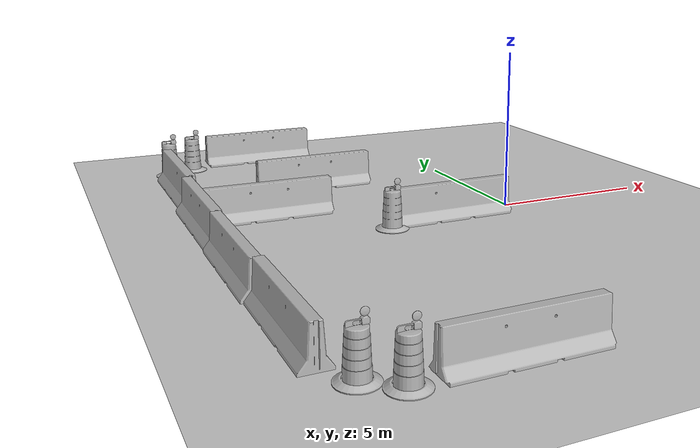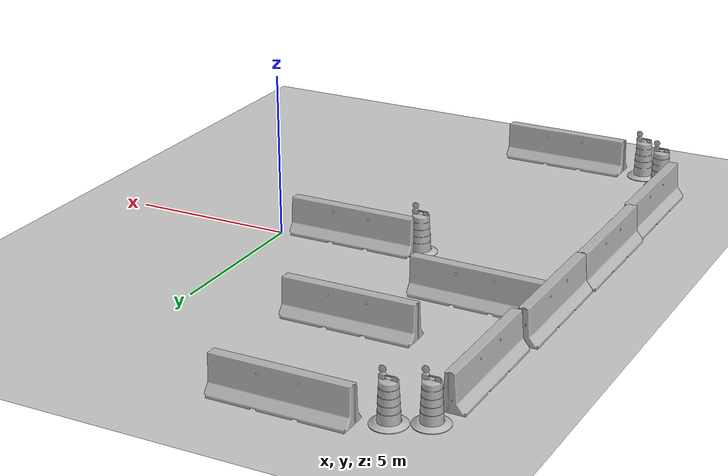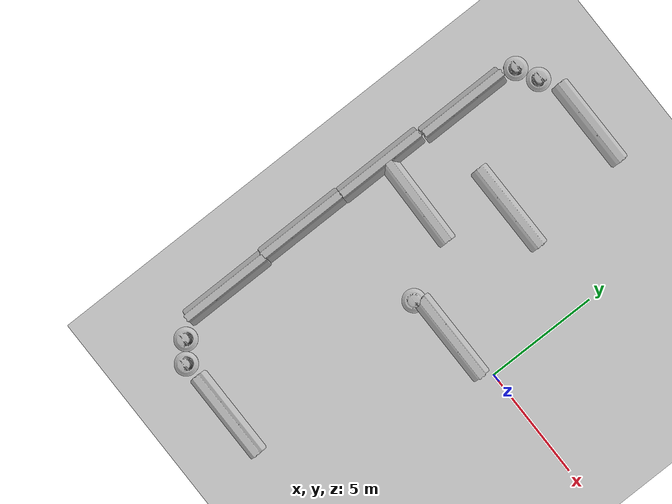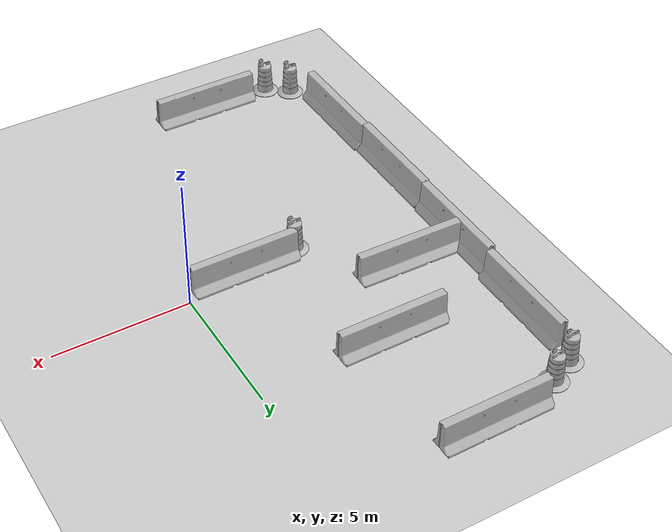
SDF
<sdf version="1.6">
 <world name="default">
  <model name="ground_plane">
   <static>1</static>
   <link name="link">
    <collision name="collision">
     <geometry><plane><normal>0 0 1</normal><size>100 100</size></plane></geometry>
     <surface><friction><ode><mu>100</mu><mu2>50</mu2></ode></friction></surface>
    </collision>
    <visual name="visual">
     <cast_shadows>0</cast_shadows>
     <geometry><plane><normal>0 0 1</normal><size>100 100</size></plane></geometry>
     <material>
      <script><uri>file://media/materials/scripts/gazebo.material</uri><name>Gazebo/Grey</name></script>
     </material>
    </visual>
   </link>
  </model>
  <model name="jersey_barrier">
   <static>1</static>
   <link name="link">
    <visual name="visual">
     <geometry><mesh><uri>model://jersey_barrier/meshes/jersey_barrier.dae</uri></mesh></geometry>
    </visual>
    <collision name="upright">
     <pose>0 0 0.5715 0 -0 0</pose>
     <geometry><box><size>4.06542 0.3063 1.143</size></box></geometry>
    </collision>
    <collision name="base">
     <pose>0 0 0.032258 0 -0 0</pose>
     <geometry><box><size>4.06542 0.8107 0.064516</size></box></geometry>
    </collision>
    <collision name="base2">
     <pose>0 0 0.1 0 -0 0</pose>
     <geometry><box><size>4.06542 0.65 0.1</size></box></geometry>
    </collision>
    <collision name="base3">
     <pose>0 0 0.2 0 -0 0</pose>
     <geometry><box><size>4.06542 0.5 0.1</size></box></geometry>
    </collision>
    <collision name="left-angle">
     <pose>0 -0.224 0.2401 0.9 -0 0</pose>
     <geometry><box><size>4.06542 0.5 0.064516</size></box></geometry>
    </collision>
    <collision name="right-angle">
     <pose>0 0.224 0.2401 -0.9 0 0</pose>
     <geometry><box><size>4.06542 0.5 0.064516</size></box></geometry>
    </collision>
   </link>
   <pose>-5.65677 9.4608 0 0 -0 0</pose>
  </model>
  <model name="jersey_barrier_clone_2_clone_2">
   <static>1</static>
   <link name="link">
    <visual name="visual">
     <geometry><mesh><uri>model://jersey_barrier/meshes/jersey_barrier.dae</uri></mesh></geometry>
    </visual>
    <collision name="upright">
     <pose>0 0 0.5715 0 -0 0</pose>
     <geometry><box><size>4.06542 0.3063 1.143</size></box></geometry>
    </collision>
    <collision name="base">
     <pose>0 0 0.032258 0 -0 0</pose>
     <geometry><box><size>4.06542 0.8107 0.064516</size></box></geometry>
    </collision>
    <collision name="base2">
     <pose>0 0 0.1 0 -0 0</pose>
     <geometry><box><size>4.06542 0.65 0.1</size></box></geometry>
    </collision>
    <collision name="base3">
     <pose>0 0 0.2 0 -0 0</pose>
     <geometry><box><size>4.06542 0.5 0.1</size></box></geometry>
    </collision>
    <collision name="left-angle">
     <pose>0 -0.224 0.2401 0.9 -0 0</pose>
     <geometry><box><size>4.06542 0.5 0.064516</size></box></geometry>
    </collision>
    <collision name="right-angle">
     <pose>0 0.224 0.2401 -0.9 0 0</pose>
     <geometry><box><size>4.06542 0.5 0.064516</size></box></geometry>
    </collision>
   </link>
   <pose>-5.44605 -9.49634 0 0 -0 0</pose>
  </model>
  <model name="jersey_barrier_clone_3_clone_1_clone">
   <static>1</static>
   <link name="link">
    <visual name="visual">
     <geometry><mesh><uri>model://jersey_barrier/meshes/jersey_barrier.dae</uri></mesh></geometry>
    </visual>
    <collision name="upright">
     <pose>0 0 0.5715 0 -0 0</pose>
     <geometry><box><size>4.06542 0.3063 1.143</size></box></geometry>
    </collision>
    <collision name="base">
     <pose>0 0 0.032258 0 -0 0</pose>
     <geometry><box><size>4.06542 0.8107 0.064516</size></box></geometry>
    </collision>
    <collision name="base2">
     <pose>0 0 0.1 0 -0 0</pose>
     <geometry><box><size>4.06542 0.65 0.1</size></box></geometry>
    </collision>
    <collision name="base3">
     <pose>0 0 0.2 0 -0 0</pose>
     <geometry><box><size>4.06542 0.5 0.1</size></box></geometry>
    </collision>
    <collision name="left-angle">
     <pose>0 -0.224 0.2401 0.9 -0 0</pose>
     <geometry><box><size>4.06542 0.5 0.064516</size></box></geometry>
    </collision>
    <collision name="right-angle">
     <pose>0 0.224 0.2401 -0.9 0 0</pose>
     <geometry><box><size>4.06542 0.5 0.064516</size></box></geometry>
    </collision>
   </link>
   <pose>-9.54289 -6.33149 0 0 0 -1.56865</pose>
  </model>
  <model name="jersey_barrier_clone_3_clone_1_clone_0">
   <static>1</static>
   <link name="link">
    <visual name="visual">
     <geometry><mesh><uri>model://jersey_barrier/meshes/jersey_barrier.dae</uri></mesh></geometry>
    </visual>
    <collision name="upright">
     <pose>0 0 0.5715 0 -0 0</pose>
     <geometry><box><size>4.06542 0.3063 1.143</size></box></geometry>
    </collision>
    <collision name="base">
     <pose>0 0 0.032258 0 -0 0</pose>
     <geometry><box><size>4.06542 0.8107 0.064516</size></box></geometry>
    </collision>
    <collision name="base2">
     <pose>0 0 0.1 0 -0 0</pose>
     <geometry><box><size>4.06542 0.65 0.1</size></box></geometry>
    </collision>
    <collision name="base3">
     <pose>0 0 0.2 0 -0 0</pose>
     <geometry><box><size>4.06542 0.5 0.1</size></box></geometry>
    </collision>
    <collision name="left-angle">
     <pose>0 -0.224 0.2401 0.9 -0 0</pose>
     <geometry><box><size>4.06542 0.5 0.064516</size></box></geometry>
    </collision>
    <collision name="right-angle">
     <pose>0 0.224 0.2401 -0.9 0 0</pose>
     <geometry><box><size>4.06542 0.5 0.064516</size></box></geometry>
    </collision>
   </link>
   <pose>-9.6221 -2.35336 0 0 0 -1.56865</pose>
  </model>
  <model name="jersey_barrier_clone_3_clone_1_clone_1">
   <static>1</static>
   <link name="link">
    <visual name="visual">
     <geometry><mesh><uri>model://jersey_barrier/meshes/jersey_barrier.dae</uri></mesh></geometry>
    </visual>
    <collision name="upright">
     <pose>0 0 0.5715 0 -0 0</pose>
     <geometry><box><size>4.06542 0.3063 1.143</size></box></geometry>
    </collision>
    <collision name="base">
     <pose>0 0 0.032258 0 -0 0</pose>
     <geometry><box><size>4.06542 0.8107 0.064516</size></box></geometry>
    </collision>
    <collision name="base2">
     <pose>0 0 0.1 0 -0 0</pose>
     <geometry><box><size>4.06542 0.65 0.1</size></box></geometry>
    </collision>
    <collision name="base3">
     <pose>0 0 0.2 0 -0 0</pose>
     <geometry><box><size>4.06542 0.5 0.1</size></box></geometry>
    </collision>
    <collision name="left-angle">
     <pose>0 -0.224 0.2401 0.9 -0 0</pose>
     <geometry><box><size>4.06542 0.5 0.064516</size></box></geometry>
    </collision>
    <collision name="right-angle">
     <pose>0 0.224 0.2401 -0.9 0 0</pose>
     <geometry><box><size>4.06542 0.5 0.064516</size></box></geometry>
    </collision>
   </link>
   <pose>-9.58952 1.69745 0 0 0 -1.56865</pose>
  </model>
  <model name="jersey_barrier_clone_3_clone_1_clone_2">
   <static>1</static>
   <link name="link">
    <visual name="visual">
     <geometry><mesh><uri>model://jersey_barrier/meshes/jersey_barrier.dae</uri></mesh></geometry>
    </visual>
    <collision name="upright">
     <pose>0 0 0.5715 0 -0 0</pose>
     <geometry><box><size>4.06542 0.3063 1.143</size></box></geometry>
    </collision>
    <collision name="base">
     <pose>0 0 0.032258 0 -0 0</pose>
     <geometry><box><size>4.06542 0.8107 0.064516</size></box></geometry>
    </collision>
    <collision name="base2">
     <pose>0 0 0.1 0 -0 0</pose>
     <geometry><box><size>4.06542 0.65 0.1</size></box></geometry>
    </collision>
    <collision name="base3">
     <pose>0 0 0.2 0 -0 0</pose>
     <geometry><box><size>4.06542 0.5 0.1</size></box></geometry>
    </collision>
    <collision name="left-angle">
     <pose>0 -0.224 0.2401 0.9 -0 0</pose>
     <geometry><box><size>4.06542 0.5 0.064516</size></box></geometry>
    </collision>
    <collision name="right-angle">
     <pose>0 0.224 0.2401 -0.9 0 0</pose>
     <geometry><box><size>4.06542 0.5 0.064516</size></box></geometry>
    </collision>
   </link>
   <pose>-9.44715 5.83721 0 0 0 -1.56865</pose>
  </model>
  <model name="Construction Barrel_1">
   <link name="link">
    <inertial>
     <pose>0 0 0.4 0 -0 0</pose>
     <mass>500</mass>
     <inertia><ixx>51.2096</ixx><iyy>51.2096</iyy><izz>25</izz><ixy>0</ixy><ixz>0</ixz><iyz>0</iyz></inertia>
    </inertial>
    <collision name="collision">
     <geometry><mesh><uri>model://construction_barrel/meshes/construction_barrel.dae</uri></mesh></geometry>
    </collision>
    <visual name="visual">
     <geometry><mesh><uri>model://construction_barrel/meshes/construction_barrel.dae</uri></mesh></geometry>
    </visual>
   </link>
   <pose>-9.2726 8.48395 -0 0 -0 -4.6e-05</pose>
  </model>
  <model name="Construction Barrel_2">
   <link name="link">
    <inertial>
     <pose>0 0 0.4 0 -0 0</pose>
     <mass>500</mass>
     <inertia><ixx>51.2096</ixx><iyy>51.2096</iyy><izz>25</izz><ixy>0</ixy><ixz>0</ixz><iyz>0</iyz></inertia>
    </inertial>
    <collision name="collision">
     <geometry><mesh><uri>model://construction_barrel/meshes/construction_barrel.dae</uri></mesh></geometry>
    </collision>
    <visual name="visual">
     <geometry><mesh><uri>model://construction_barrel/meshes/construction_barrel.dae</uri></mesh></geometry>
    </visual>
   </link>
   <pose>-8.3436 8.93857 -1e-06 4e-06 -2e-06 -3e-05</pose>
  </model>
  <model name="Construction Barrel_4">
   <link name="link">
    <inertial>
     <pose>0 0 0.4 0 -0 0</pose>
     <mass>500</mass>
     <inertia><ixx>51.2096</ixx><iyy>51.2096</iyy><izz>25</izz><ixy>0</ixy><ixz>0</ixz><iyz>0</iyz></inertia>
    </inertial>
    <collision name="collision">
     <geometry><mesh><uri>model://construction_barrel/meshes/construction_barrel.dae</uri></mesh></geometry>
    </collision>
    <visual name="visual">
     <geometry><mesh><uri>model://construction_barrel/meshes/construction_barrel.dae</uri></mesh></geometry>
    </visual>
   </link>
   <pose>-8.13314 -9.57171 0 2e-06 1e-06 -0.00045</pose>
  </model>
  <model name="Construction Barrel_5">
   <link name="link">
    <inertial>
     <pose>0 0 0.4 0 -0 0</pose>
     <mass>500</mass>
     <inertia><ixx>51.2096</ixx><iyy>51.2096</iyy><izz>25</izz><ixy>0</ixy><ixz>0</ixz><iyz>0</iyz></inertia>
    </inertial>
    <collision name="collision">
     <geometry><mesh><uri>model://construction_barrel/meshes/construction_barrel.dae</uri></mesh></geometry>
    </collision>
    <visual name="visual">
     <geometry><mesh><uri>model://construction_barrel/meshes/construction_barrel.dae</uri></mesh></geometry>
    </visual>
   </link>
   <pose>-8.93846 -8.96004 -2e-06 7e-06 -4e-06 -0.000348</pose>
  </model>
  <model name="jersey_barrier_0">
   <static>1</static>
   <link name="link">
    <visual name="visual">
     <geometry><mesh><uri>model://jersey_barrier/meshes/jersey_barrier.dae</uri></mesh></geometry>
    </visual>
    <collision name="upright">
     <pose>0 0 0.5715 0 -0 0</pose>
     <geometry><box><size>4.06542 0.3063 1.143</size></box></geometry>
    </collision>
    <collision name="base">
     <pose>0 0 0.032258 0 -0 0</pose>
     <geometry><box><size>4.06542 0.8107 0.064516</size></box></geometry>
    </collision>
    <collision name="base2">
     <pose>0 0 0.1 0 -0 0</pose>
     <geometry><box><size>4.06542 0.65 0.1</size></box></geometry>
    </collision>
    <collision name="base3">
     <pose>0 0 0.2 0 -0 0</pose>
     <geometry><box><size>4.06542 0.5 0.1</size></box></geometry>
    </collision>
    <collision name="left-angle">
     <pose>0 -0.224 0.2401 0.9 -0 0</pose>
     <geometry><box><size>4.06542 0.5 0.064516</size></box></geometry>
    </collision>
    <collision name="right-angle">
     <pose>0 0.224 0.2401 -0.9 0 0</pose>
     <geometry><box><size>4.06542 0.5 0.064516</size></box></geometry>
    </collision>
   </link>
   <pose>-4.97429 4.73074 0 0 -0 0</pose>
  </model>
  <model name="jersey_barrier_0_clone_1">
   <static>1</static>
   <link name="link">
    <visual name="visual">
     <geometry><mesh><uri>model://jersey_barrier/meshes/jersey_barrier.dae</uri></mesh></geometry>
    </visual>
    <collision name="upright">
     <pose>0 0 0.5715 0 -0 0</pose>
     <geometry><box><size>4.06542 0.3063 1.143</size></box></geometry>
    </collision>
    <collision name="base">
     <pose>0 0 0.032258 0 -0 0</pose>
     <geometry><box><size>4.06542 0.8107 0.064516</size></box></geometry>
    </collision>
    <collision name="base2">
     <pose>0 0 0.1 0 -0 0</pose>
     <geometry><box><size>4.06542 0.65 0.1</size></box></geometry>
    </collision>
    <collision name="base3">
     <pose>0 0 0.2 0 -0 0</pose>
     <geometry><box><size>4.06542 0.5 0.1</size></box></geometry>
    </collision>
    <collision name="left-angle">
     <pose>0 -0.224 0.2401 0.9 -0 0</pose>
     <geometry><box><size>4.06542 0.5 0.064516</size></box></geometry>
    </collision>
    <collision name="right-angle">
     <pose>0 0.224 0.2401 -0.9 0 0</pose>
     <geometry><box><size>4.06542 0.5 0.064516</size></box></geometry>
    </collision>
   </link>
   <pose>-2.28125 -0.396276 0 0 -0 0</pose>
  </model>
  <model name="jersey_barrier_0_clone_1_clone_clone">
   <static>1</static>
   <link name="link">
    <visual name="visual">
     <geometry><mesh><uri>model://jersey_barrier/meshes/jersey_barrier.dae</uri></mesh></geometry>
    </visual>
    <collision name="upright">
     <pose>0 0 0.5715 0 -0 0</pose>
     <geometry><box><size>4.06542 0.3063 1.143</size></box></geometry>
    </collision>
    <collision name="base">
     <pose>0 0 0.032258 0 -0 0</pose>
     <geometry><box><size>4.06542 0.8107 0.064516</size></box></geometry>
    </collision>
    <collision name="base2">
     <pose>0 0 0.1 0 -0 0</pose>
     <geometry><box><size>4.06542 0.65 0.1</size></box></geometry>
    </collision>
    <collision name="base3">
     <pose>0 0 0.2 0 -0 0</pose>
     <geometry><box><size>4.06542 0.5 0.1</size></box></geometry>
    </collision>
    <collision name="left-angle">
     <pose>0 -0.224 0.2401 0.9 -0 0</pose>
     <geometry><box><size>4.06542 0.5 0.064516</size></box></geometry>
    </collision>
    <collision name="right-angle">
     <pose>0 0.224 0.2401 -0.9 0 0</pose>
     <geometry><box><size>4.06542 0.5 0.064516</size></box></geometry>
    </collision>
    <pose>-4.70694 -2.78766 0 0 0 -1.58136</pose>
    <velocity>0 0 0 0 -0 0</velocity>
    <acceleration>0 0 0 0 -0 0</acceleration>
    <wrench>0 0 0 0 -0 0</wrench>
   </link>
   <pose>-4.70694 -2.78766 0 0 0 -1.58136</pose>
   <scale>1 1 1</scale>
  </model>
  <model name="coke_can">
   <link name="link">
    <inertial>
     <pose>-0.01 -0.012 0.15 0 -0 0</pose>
     <mass>0.39</mass>
     <inertia><ixx>0.00058</ixx><ixy>0</ixy><ixz>0</ixz><iyy>0.00058</iyy><iyz>0</iyz><izz>0.00019</izz></inertia>
    </inertial>
    <collision name="collision">
     <pose>0 0 -0.46 0 -0 0</pose>
     <geometry><mesh><uri>model://coke_can/meshes/coke_can.dae</uri></mesh></geometry>
     <surface>
      <friction><ode><mu>1</mu><mu2>1</mu2></ode></friction>
      <contact><ode><kp>1e+07</kp><kd>1</kd><min_depth>0.001</min_depth><max_vel>0.1</max_vel></ode></contact>
     </surface>
    </collision>
    <visual name="visual">
     <pose>0 0 -0.46 0 -0 0</pose>
     <geometry><mesh><uri>model://coke_can/meshes/coke_can.dae</uri></mesh></geometry>
    </visual>
   </link>
   <pose>-3.00584 -2.50788 -0.004694 -0.043045 0.007276 -8.3e-05</pose>
  </model>
  <model name="Construction Barrel_6">
   <link name="link">
    <inertial>
     <pose>0 0 0.4 0 -0 0</pose>
     <mass>500</mass>
     <inertia><ixx>51.2096</ixx><iyy>51.2096</iyy><izz>25</izz><ixy>0</ixy><ixz>0</ixz><iyz>0</iyz></inertia>
    </inertial>
    <collision name="collision">
     <geometry><mesh><uri>model://construction_barrel/meshes/construction_barrel.dae</uri></mesh></geometry>
    </collision>
    <visual name="visual">
     <geometry><mesh><uri>model://construction_barrel/meshes/construction_barrel.dae</uri></mesh></geometry>
    </visual>
   </link>
   <pose>-4.39755 -0.664585 -0.000342 -0.00176 -0.000716 0.00027</pose>
  </model>
 </world>
</sdf>
